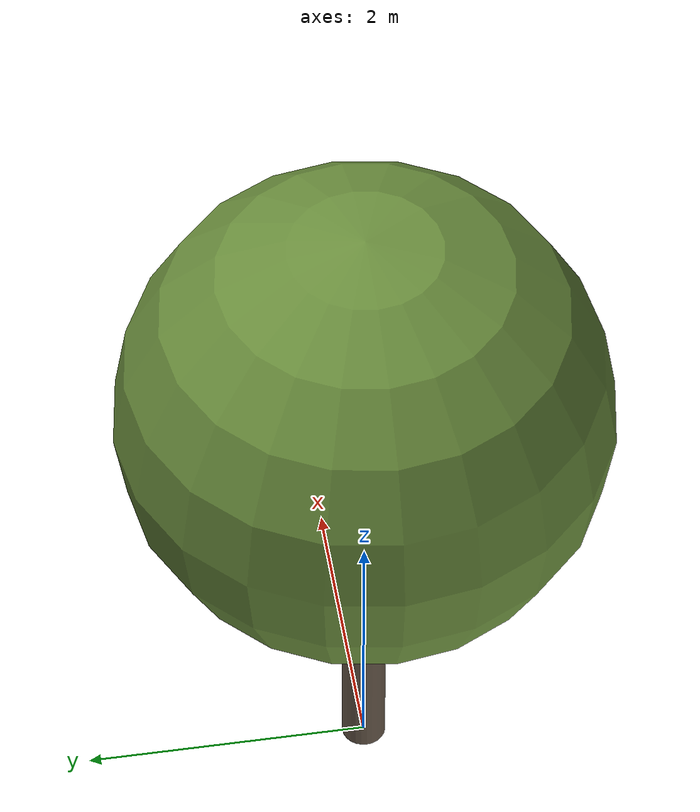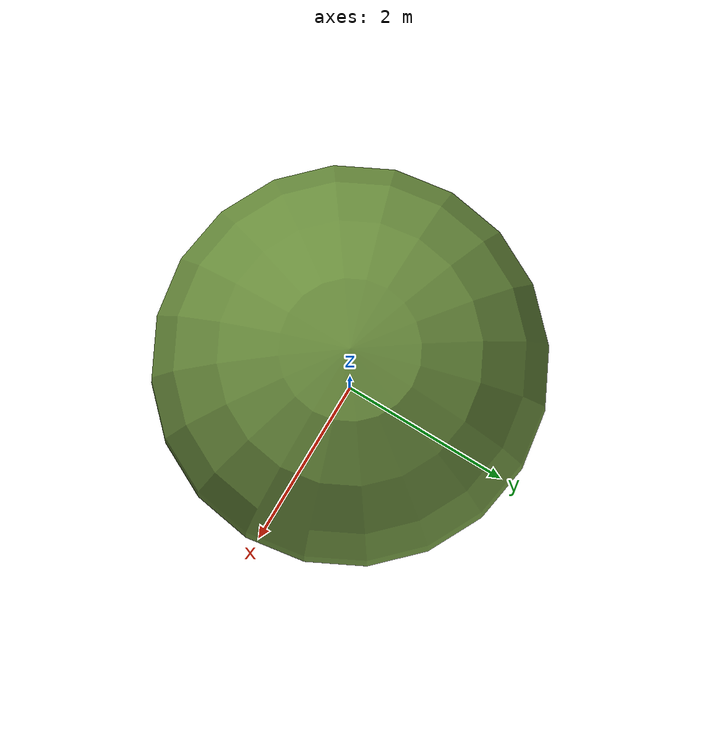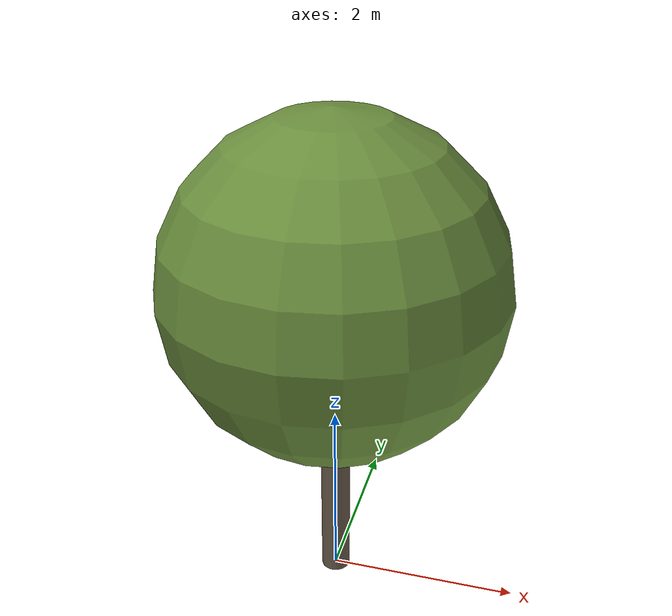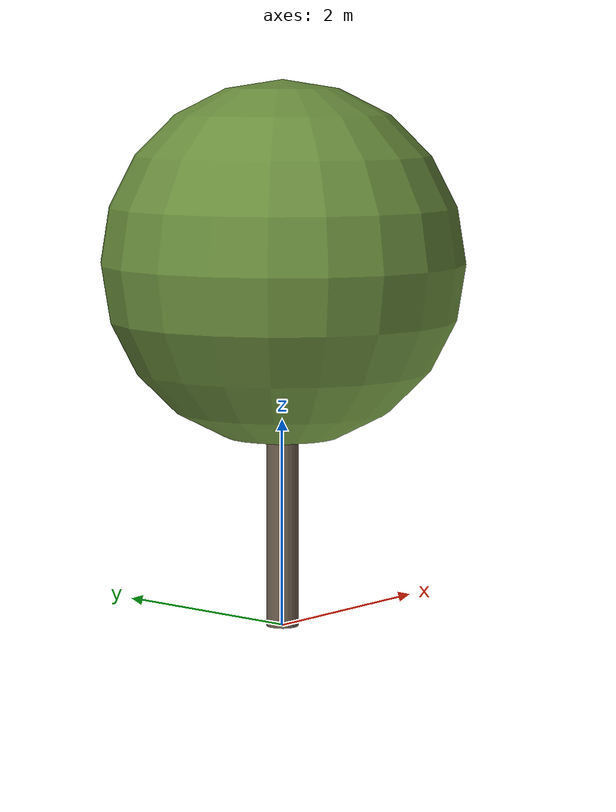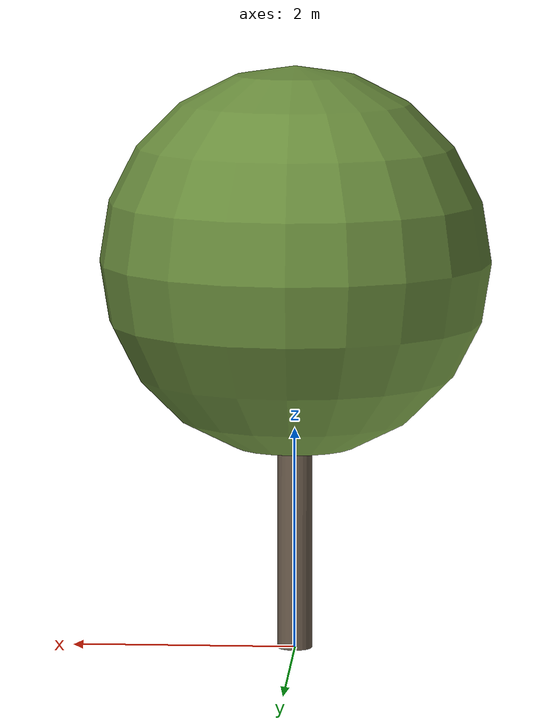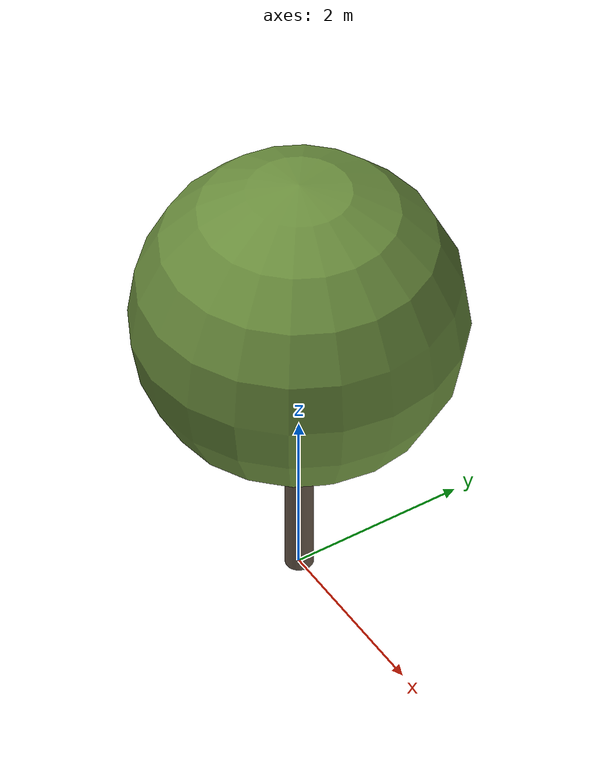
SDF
<?xml version="1.0" ?>
<sdf version="1.10">
  <model name="olivier_provence_12">
    <static>true</static>

    <!-- Tronc -->
    <link name="trunk">
      <pose>0 0 1.4895436892578195 0 0 0</pose>
      <visual name="trunk_visual">
        <geometry>
          <cylinder>
            <radius>0.15520306159272826</radius>
            <length>2.979087378515639</length>
          </cylinder>
        </geometry>
        <material>
          <ambient>0.42 0.36 0.30 1</ambient>
          <diffuse>0.42 0.36 0.30 1</diffuse>
          <specular>0.1 0.1 0.1 1</specular>
        </material>
      </visual>
      <collision name="trunk_collision">
        <geometry>
          <cylinder>
            <radius>0.15520306159272826</radius>
            <length>2.979087378515639</length>
          </cylinder>
        </geometry>
      </collision>
    </link>

    <!-- Feuillage -->
    <link name="crown">
      <pose>0 0 3.5029256814665524 0 0 0</pose>
      <visual name="crown_visual">
        <geometry>
          <sphere>
              <radius>1.7461276765030438</radius>
            </sphere>
        </geometry>
        <material>
          <ambient>0.42 0.56 0.24 1</ambient>
          <diffuse>0.42 0.56 0.24 1</diffuse>
          <specular>0.1 0.1 0.1 1</specular>
        </material>
      </visual>
      <collision name="crown_collision">
        <geometry>
          <sphere>
            <radius>1.3969021412024352</radius>
          </sphere>
        </geometry>
      </collision>
    </link>

    <!-- Joint tronc-feuillage -->
    <joint name="trunk_crown_joint" type="fixed">
      <parent>trunk</parent>
      <child>crown</child>
    </joint>

  </model>
</sdf>
